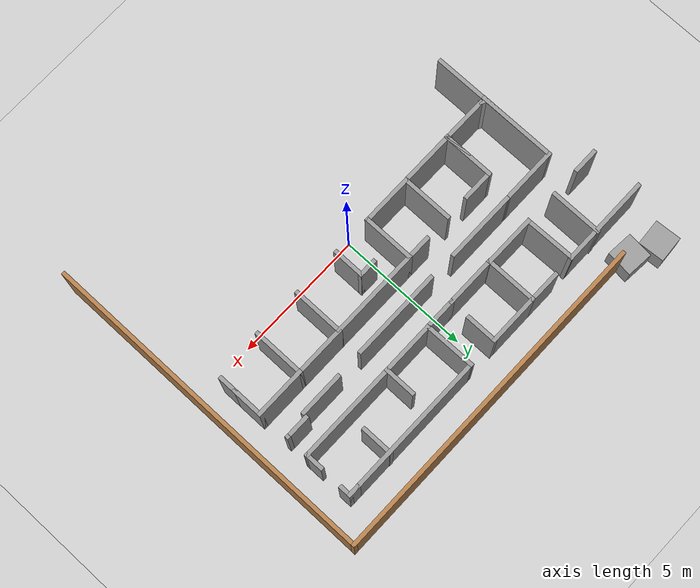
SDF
<sdf version="1.7">
 <world name="default">
  <model name="ground_plane">
   <static>1</static>
   <link name="link">
    <collision name="collision">
     <geometry><plane><normal>0 0 1</normal><size>100 100</size></plane></geometry>
     <surface><friction><ode><mu>100</mu><mu2>50</mu2></ode></friction></surface>
    </collision>
    <visual name="visual">
     <cast_shadows>0</cast_shadows>
     <geometry><plane><normal>0 0 1</normal><size>100 100</size></plane></geometry>
     <material>
      <script><uri>file://media/materials/scripts/gazebo.material</uri><name>Gazebo/Grey</name></script>
     </material>
    </visual>
   </link>
  </model>
  <model name="nidar1">
   <link name="Wall_10">
    <collision name="Wall_10_Collision">
     <geometry><box><size>13 0.15 2.5</size></box></geometry>
     <pose>0 0 1.25 0 -0 0</pose>
    </collision>
    <visual name="Wall_10_Visual">
     <pose>0 0 1.25 0 -0 0</pose>
     <geometry><box><size>13 0.15 2.5</size></box></geometry>
     <material>
      <script><uri>file://media/materials/scripts/gazebo.material</uri><name>Gazebo/Wood</name></script>
      <ambient>1 1 1 1</ambient>
     </material>
     <meta><layer>0</layer></meta>
    </visual>
    <pose>1.04576 7.23235 0 0 -0 3.14159</pose>
   </link>
   <link name="Wall_104">
    <collision name="Wall_104_Collision">
     <geometry><box><size>2.75 0.15 2.5</size></box></geometry>
     <pose>0 0 1.25 0 -0 0</pose>
    </collision>
    <visual name="Wall_104_Visual">
     <pose>0 0 1.25 0 -0 0</pose>
     <geometry><box><size>2.75 0.15 2.5</size></box></geometry>
     <material>
      <script><uri>file://media/materials/scripts/gazebo.material</uri><name>Gazebo/Grey</name></script>
      <ambient>1 1 1 1</ambient>
     </material>
     <meta><layer>0</layer></meta>
    </visual>
    <pose>-2.90001 3.22586 0 0 -0 0</pose>
   </link>
   <link name="Wall_106">
    <collision name="Wall_106_Collision">
     <geometry><box><size>3.5 0.15 2.5</size></box></geometry>
     <pose>0 0 1.25 0 -0 0</pose>
    </collision>
    <visual name="Wall_106_Visual">
     <pose>0 0 1.25 0 -0 0</pose>
     <geometry><box><size>3.5 0.15 2.5</size></box></geometry>
     <material>
      <script><uri>file://media/materials/scripts/gazebo.material</uri><name>Gazebo/Grey</name></script>
      <ambient>1 1 1 1</ambient>
     </material>
     <meta><layer>0</layer></meta>
    </visual>
    <pose>1.15003 3.19392 0 0 -0 0</pose>
   </link>
   <link name="Wall_108">
    <collision name="Wall_108_Collision">
     <geometry><box><size>1.75 0.15 2.5</size></box></geometry>
     <pose>0 0 1.25 0 -0 0</pose>
    </collision>
    <visual name="Wall_108_Visual">
     <pose>0 0 1.25 0 -0 0</pose>
     <geometry><box><size>1.75 0.15 2.5</size></box></geometry>
     <material>
      <script><uri>file://media/materials/scripts/gazebo.material</uri><name>Gazebo/Grey</name></script>
      <ambient>1 1 1 1</ambient>
     </material>
     <meta><layer>0</layer></meta>
    </visual>
    <pose>4.70001 3.21403 0 0 -0 0</pose>
   </link>
   <link name="Wall_110">
    <collision name="Wall_110_Collision">
     <geometry><box><size>3.5 0.15 2.5</size></box></geometry>
     <pose>0 0 1.25 0 -0 0</pose>
    </collision>
    <visual name="Wall_110_Visual">
     <pose>0 0 1.25 0 -0 0</pose>
     <geometry><box><size>3.5 0.15 2.5</size></box></geometry>
     <material>
      <script><uri>file://media/materials/scripts/gazebo.material</uri><name>Gazebo/Grey</name></script>
      <ambient>1 1 1 1</ambient>
     </material>
     <meta><layer>0</layer></meta>
    </visual>
    <pose>1.11152 2.21403 0 0 -0 0</pose>
   </link>
   <link name="Wall_111">
    <collision name="Wall_111_Collision">
     <geometry><box><size>2 0.15 2.5</size></box></geometry>
     <pose>0 0 1.25 0 -0 0</pose>
    </collision>
    <visual name="Wall_111_Visual">
     <pose>0 0 1.25 0 -0 0</pose>
     <geometry><box><size>2 0.15 2.5</size></box></geometry>
     <material>
      <script><uri>file://media/materials/scripts/gazebo.material</uri><name>Gazebo/Grey</name></script>
      <ambient>1 1 1 1</ambient>
     </material>
     <meta><layer>0</layer></meta>
    </visual>
    <pose>2.78652 1.28903 0 0 -0 -1.5708</pose>
   </link>
   <link name="Wall_113">
    <collision name="Wall_113_Collision">
     <geometry><box><size>1.25 0.15 2.5</size></box></geometry>
     <pose>0 0 1.25 0 -0 0</pose>
    </collision>
    <visual name="Wall_113_Visual">
     <pose>0 0 1.25 0 -0 0</pose>
     <geometry><box><size>1.25 0.15 2.5</size></box></geometry>
     <material>
      <script><uri>file://media/materials/scripts/gazebo.material</uri><name>Gazebo/Grey</name></script>
      <ambient>1 1 1 1</ambient>
     </material>
     <meta><layer>0</layer></meta>
    </visual>
    <pose>0.936522 0.914029 0 0 -0 1.5708</pose>
   </link>
   <link name="Wall_114">
    <collision name="Wall_114_Collision">
     <geometry><box><size>0.75 0.15 2.5</size></box></geometry>
     <pose>0 0 1.25 0 -0 0</pose>
    </collision>
    <visual name="Wall_114_Visual">
     <pose>0 0 1.25 0 -0 0</pose>
     <geometry><box><size>0.75 0.15 2.5</size></box></geometry>
     <material>
      <script><uri>file://media/materials/scripts/gazebo.material</uri><name>Gazebo/Grey</name></script>
      <ambient>1 1 1 1</ambient>
     </material>
     <meta><layer>0</layer></meta>
    </visual>
    <pose>0.636522 1.46403 0 0 -0 3.14159</pose>
   </link>
   <link name="Wall_143">
    <collision name="Wall_143_Collision">
     <geometry><box><size>2 0.15 2.5</size></box></geometry>
     <pose>0 0 1.25 0 -0 0</pose>
    </collision>
    <visual name="Wall_143_Visual">
     <pose>0 0 1.25 0 -0 0</pose>
     <geometry><box><size>2 0.15 2.5</size></box></geometry>
     <material>
      <script><uri>file://media/materials/scripts/gazebo.material</uri><name>Gazebo/Grey</name></script>
      <ambient>1 1 1 1</ambient>
     </material>
     <meta><layer>0</layer></meta>
    </visual>
    <pose>3.71152 2.21403 0 0 -0 0</pose>
   </link>
   <link name="Wall_144">
    <collision name="Wall_144_Collision">
     <geometry><box><size>2 0.15 2.5</size></box></geometry>
     <pose>0 0 1.25 0 -0 0</pose>
    </collision>
    <visual name="Wall_144_Visual">
     <pose>0 0 1.25 0 -0 0</pose>
     <geometry><box><size>2 0.15 2.5</size></box></geometry>
     <material>
      <script><uri>file://media/materials/scripts/gazebo.material</uri><name>Gazebo/Grey</name></script>
      <ambient>1 1 1 1</ambient>
     </material>
     <meta><layer>0</layer></meta>
    </visual>
    <pose>4.63652 1.28903 0 0 -0 -1.5708</pose>
   </link>
   <link name="Wall_147">
    <collision name="Wall_147_Collision">
     <geometry><box><size>2 0.15 2.5</size></box></geometry>
     <pose>0 0 1.25 0 -0 0</pose>
    </collision>
    <visual name="Wall_147_Visual">
     <pose>0 0 1.25 0 -0 0</pose>
     <geometry><box><size>2 0.15 2.5</size></box></geometry>
     <material>
      <script><uri>file://media/materials/scripts/gazebo.material</uri><name>Gazebo/Grey</name></script>
      <ambient>1 1 1 1</ambient>
     </material>
     <meta><layer>0</layer></meta>
    </visual>
    <pose>5.56152 2.21403 0 0 -0 0</pose>
   </link>
   <link name="Wall_148">
    <collision name="Wall_148_Collision">
     <geometry><box><size>1.25 0.15 2.5</size></box></geometry>
     <pose>0 0 1.25 0 -0 0</pose>
    </collision>
    <visual name="Wall_148_Visual">
     <pose>0 0 1.25 0 -0 0</pose>
     <geometry><box><size>1.25 0.15 2.5</size></box></geometry>
     <material>
      <script><uri>file://media/materials/scripts/gazebo.material</uri><name>Gazebo/Grey</name></script>
      <ambient>1 1 1 1</ambient>
     </material>
     <meta><layer>0</layer></meta>
    </visual>
    <pose>6.48652 1.66403 0 0 -0 -1.5708</pose>
   </link>
   <link name="Wall_152">
    <collision name="Wall_152_Collision">
     <geometry><box><size>0.75 0.15 2.5</size></box></geometry>
     <pose>0 0 1.25 0 -0 0</pose>
    </collision>
    <visual name="Wall_152_Visual">
     <pose>0 0 1.25 0 -0 0</pose>
     <geometry><box><size>0.75 0.15 2.5</size></box></geometry>
     <material>
      <script><uri>file://media/materials/scripts/gazebo.material</uri><name>Gazebo/Grey</name></script>
      <ambient>1 1 1 1</ambient>
     </material>
     <meta><layer>0</layer></meta>
    </visual>
    <pose>6.48652 0.814029 0 0 -0 -1.5708</pose>
   </link>
   <link name="Wall_18">
    <collision name="Wall_18_Collision">
     <geometry><box><size>3.5 0.15 2.5</size></box></geometry>
     <pose>0 0 1.25 0 -0 0</pose>
    </collision>
    <visual name="Wall_18_Visual">
     <pose>0 0 1.25 0 -0 0</pose>
     <geometry><box><size>3.5 0.15 2.5</size></box></geometry>
     <material>
      <script><uri>file://media/materials/scripts/gazebo.material</uri><name>Gazebo/Grey</name></script>
      <ambient>1 1 1 1</ambient>
     </material>
     <meta><layer>0</layer></meta>
    </visual>
    <pose>-5.79576 6.09678 0 0 -0 0</pose>
   </link>
   <link name="Wall_19">
    <collision name="Wall_19_Collision">
     <geometry><box><size>2 0.15 2.5</size></box></geometry>
     <pose>0 0 1.25 0 -0 0</pose>
    </collision>
    <visual name="Wall_19_Visual">
     <pose>0 0 1.25 0 -0 0</pose>
     <geometry><box><size>2 0.15 2.5</size></box></geometry>
     <material>
      <script><uri>file://media/materials/scripts/gazebo.material</uri><name>Gazebo/Grey</name></script>
      <ambient>1 1 1 1</ambient>
     </material>
     <meta><layer>0</layer></meta>
    </visual>
    <pose>-4.12076 5.17178 0 0 -0 -1.55189</pose>
   </link>
   <link name="Wall_20">
    <collision name="Wall_20_Collision">
     <geometry><box><size>2.02788 0.15 2.5</size></box></geometry>
     <pose>0 0 1.25 0 -0 0</pose>
    </collision>
    <visual name="Wall_20_Visual">
     <pose>0 0 1.25 0 -0 0</pose>
     <geometry><box><size>2.02788 0.15 2.5</size></box></geometry>
     <material>
      <script><uri>file://media/materials/scripts/gazebo.material</uri><name>Gazebo/Grey</name></script>
      <ambient>1 1 1 1</ambient>
     </material>
     <meta><layer>0</layer></meta>
    </visual>
    <pose>-3.16469 4.24354 0 0 -0 -0.003456</pose>
   </link>
   <link name="Wall_21">
    <collision name="Wall_21_Collision">
     <geometry><box><size>2 0.15 2.5</size></box></geometry>
     <pose>0 0 1.25 0 -0 0</pose>
    </collision>
    <visual name="Wall_21_Visual">
     <pose>0 0 1.25 0 -0 0</pose>
     <geometry><box><size>2 0.15 2.5</size></box></geometry>
     <material>
      <script><uri>file://media/materials/scripts/gazebo.material</uri><name>Gazebo/Grey</name></script>
      <ambient>1 1 1 1</ambient>
     </material>
     <meta><layer>0</layer></meta>
    </visual>
    <pose>-2.22612 5.15009 0 0 -0 1.5708</pose>
   </link>
   <link name="Wall_22">
    <collision name="Wall_22_Collision">
     <geometry><box><size>1.27717 0.15 2.5</size></box></geometry>
     <pose>0 0 1.25 0 -0 0</pose>
    </collision>
    <visual name="Wall_22_Visual">
     <pose>0 0 1.25 0 -0 0</pose>
     <geometry><box><size>1.27717 0.15 2.5</size></box></geometry>
     <material>
      <script><uri>file://media/materials/scripts/gazebo.material</uri><name>Gazebo/Grey</name></script>
      <ambient>1 1 1 1</ambient>
     </material>
     <meta><layer>0</layer></meta>
    </visual>
    <pose>-2.78969 6.09354 0 0 -0 3.13584</pose>
   </link>
   <link name="Wall_25">
    <collision name="Wall_25_Collision">
     <geometry><box><size>2 0.15 2.5</size></box></geometry>
     <pose>0 0 1.25 0 -0 0</pose>
    </collision>
    <visual name="Wall_25_Visual">
     <pose>0 0 1.25 0 -0 0</pose>
     <geometry><box><size>2 0.15 2.5</size></box></geometry>
     <material>
      <script><uri>file://media/materials/scripts/gazebo.material</uri><name>Gazebo/Grey</name></script>
      <ambient>1 1 1 1</ambient>
     </material>
     <meta><layer>0</layer></meta>
    </visual>
    <pose>-1.30112 6.0903 0 0 -0 0</pose>
   </link>
   <link name="Wall_26">
    <collision name="Wall_26_Collision">
     <geometry><box><size>1.25 0.15 2.5</size></box></geometry>
     <pose>0 0 1.25 0 -0 0</pose>
    </collision>
    <visual name="Wall_26_Visual">
     <pose>0 0 1.25 0 -0 0</pose>
     <geometry><box><size>1.25 0.15 2.5</size></box></geometry>
     <material>
      <script><uri>file://media/materials/scripts/gazebo.material</uri><name>Gazebo/Grey</name></script>
      <ambient>1 1 1 1</ambient>
     </material>
     <meta><layer>0</layer></meta>
    </visual>
    <pose>-0.376115 5.5403 0 0 -0 -1.5708</pose>
   </link>
   <link name="Wall_28">
    <collision name="Wall_28_Collision">
     <geometry><box><size>2 0.15 2.5</size></box></geometry>
     <pose>0 0 1.25 0 -0 0</pose>
    </collision>
    <visual name="Wall_28_Visual">
     <pose>0 0 1.25 0 -0 0</pose>
     <geometry><box><size>2 0.15 2.5</size></box></geometry>
     <material>
      <script><uri>file://media/materials/scripts/gazebo.material</uri><name>Gazebo/Grey</name></script>
      <ambient>1 1 1 1</ambient>
     </material>
     <meta><layer>0</layer></meta>
    </visual>
    <pose>-1.30112 4.22509 0 0 -0 0</pose>
   </link>
   <link name="Wall_29">
    <collision name="Wall_29_Collision">
     <geometry><box><size>1.27011 0.15 2.5</size></box></geometry>
     <pose>0 0 1.25 0 -0 0</pose>
    </collision>
    <visual name="Wall_29_Visual">
     <pose>0 0 1.25 0 -0 0</pose>
     <geometry><box><size>1.27011 0.15 2.5</size></box></geometry>
     <material>
      <script><uri>file://media/materials/scripts/gazebo.material</uri><name>Gazebo/Grey</name></script>
      <ambient>1 1 1 1</ambient>
     </material>
     <meta><layer>0</layer></meta>
    </visual>
    <pose>0.183942 4.22509 0 0 -0 0</pose>
   </link>
   <link name="Wall_30">
    <collision name="Wall_30_Collision">
     <geometry><box><size>2.00011 0.15 2.5</size></box></geometry>
     <pose>0 0 1.25 0 -0 0</pose>
    </collision>
    <visual name="Wall_30_Visual">
     <pose>0 0 1.25 0 -0 0</pose>
     <geometry><box><size>2.00011 0.15 2.5</size></box></geometry>
     <material>
      <script><uri>file://media/materials/scripts/gazebo.material</uri><name>Gazebo/Grey</name></script>
      <ambient>1 1 1 1</ambient>
     </material>
     <meta><layer>0</layer></meta>
    </visual>
    <pose>0.733942 5.15009 0 0 -0 1.58167</pose>
   </link>
   <link name="Wall_31">
    <collision name="Wall_31_Collision">
     <geometry><box><size>5.5 0.15 2.5</size></box></geometry>
     <pose>0 0 1.25 0 -0 0</pose>
    </collision>
    <visual name="Wall_31_Visual">
     <pose>0 0 1.25 0 -0 0</pose>
     <geometry><box><size>5.5 0.15 2.5</size></box></geometry>
     <material>
      <script><uri>file://media/materials/scripts/gazebo.material</uri><name>Gazebo/Grey</name></script>
      <ambient>1 1 1 1</ambient>
     </material>
     <meta><layer>0</layer></meta>
    </visual>
    <pose>3.39888 6.07509 0 0 -0 0</pose>
   </link>
   <link name="Wall_32">
    <collision name="Wall_32_Collision">
     <geometry><box><size>0.5 0.15 2.5</size></box></geometry>
     <pose>0 0 1.25 0 -0 0</pose>
    </collision>
    <visual name="Wall_32_Visual">
     <pose>0 0 1.25 0 -0 0</pose>
     <geometry><box><size>0.5 0.15 2.5</size></box></geometry>
     <material>
      <script><uri>file://media/materials/scripts/gazebo.material</uri><name>Gazebo/Grey</name></script>
      <ambient>1 1 1 1</ambient>
     </material>
     <meta><layer>0</layer></meta>
    </visual>
    <pose>6.24888 6.07509 0 0 -0 0</pose>
   </link>
   <link name="Wall_33">
    <collision name="Wall_33_Collision">
     <geometry><box><size>0.5 0.15 2.5</size></box></geometry>
     <pose>0 0 1.25 0 -0 0</pose>
    </collision>
    <visual name="Wall_33_Visual">
     <pose>0 0 1.25 0 -0 0</pose>
     <geometry><box><size>0.5 0.15 2.5</size></box></geometry>
     <material>
      <script><uri>file://media/materials/scripts/gazebo.material</uri><name>Gazebo/Grey</name></script>
      <ambient>1 1 1 1</ambient>
     </material>
     <meta><layer>0</layer></meta>
    </visual>
    <pose>6.42389 5.90009 0 0 -0 -1.5708</pose>
   </link>
   <link name="Wall_35">
    <collision name="Wall_35_Collision">
     <geometry><box><size>5.80131 0.15 2.5</size></box></geometry>
     <pose>0 0 1.25 0 -0 0</pose>
    </collision>
    <visual name="Wall_35_Visual">
     <pose>0 0 1.25 0 -0 0</pose>
     <geometry><box><size>5.80131 0.15 2.5</size></box></geometry>
     <material>
      <script><uri>file://media/materials/scripts/gazebo.material</uri><name>Gazebo/Grey</name></script>
      <ambient>1 1 1 1</ambient>
     </material>
     <meta><layer>0</layer></meta>
    </visual>
    <pose>3.58977 4.22509 0 0 -0 0</pose>
   </link>
   <link name="Wall_36">
    <collision name="Wall_36_Collision">
     <geometry><box><size>0.75 0.15 2.5</size></box></geometry>
     <pose>0 0 1.25 0 -0 0</pose>
    </collision>
    <visual name="Wall_36_Visual">
     <pose>0 0 1.25 0 -0 0</pose>
     <geometry><box><size>0.75 0.15 2.5</size></box></geometry>
     <material>
      <script><uri>file://media/materials/scripts/gazebo.material</uri><name>Gazebo/Grey</name></script>
      <ambient>1 1 1 1</ambient>
     </material>
     <meta><layer>0</layer></meta>
    </visual>
    <pose>6.4153 4.52509 0 0 -0 1.57119</pose>
   </link>
   <link name="Wall_45">
    <collision name="Wall_45_Collision">
     <geometry><box><size>0.15 0.15 2.5</size></box></geometry>
     <pose>0 0 1.25 0 -0 0</pose>
    </collision>
    <visual name="Wall_45_Visual">
     <pose>0 0 1.25 0 -0 0</pose>
     <geometry><box><size>0.15 0.15 2.5</size></box></geometry>
     <material>
      <script><uri>file://media/materials/scripts/gazebo.material</uri><name>Gazebo/Grey</name></script>
      <ambient>1 1 1 1</ambient>
     </material>
     <meta><layer>0</layer></meta>
    </visual>
    <pose>6.41542 3.37509 0 0 -0 0</pose>
   </link>
   <link name="Wall_48">
    <collision name="Wall_48_Collision">
     <geometry><box><size>2.2402 0.15 2.5</size></box></geometry>
     <pose>0 0 1.25 0 -0 0</pose>
    </collision>
    <visual name="Wall_48_Visual">
     <pose>0 0 1.25 0 -0 0</pose>
     <geometry><box><size>2.2402 0.15 2.5</size></box></geometry>
     <material>
      <script><uri>file://media/materials/scripts/gazebo.material</uri><name>Gazebo/Grey</name></script>
      <ambient>1 1 1 1</ambient>
     </material>
     <meta><layer>0</layer></meta>
    </visual>
    <pose>-5.24511 3.22259 0 0 -0 -3.13847</pose>
   </link>
   <link name="Wall_51">
    <collision name="Wall_51_Collision">
     <geometry><box><size>1 0.15 2.5</size></box></geometry>
     <pose>0 0 1.25 0 -0 0</pose>
    </collision>
    <visual name="Wall_51_Visual">
     <pose>0 0 1.25 0 -0 0</pose>
     <geometry><box><size>1 0.15 2.5</size></box></geometry>
     <material>
      <script><uri>file://media/materials/scripts/gazebo.material</uri><name>Gazebo/Grey</name></script>
      <ambient>1 1 1 1</ambient>
     </material>
     <meta><layer>0</layer></meta>
    </visual>
    <pose>-6.92657 4.2635 0 0 -0 0</pose>
   </link>
   <link name="Wall_53">
    <collision name="Wall_53_Collision">
     <geometry><box><size>2 0.15 2.5</size></box></geometry>
     <pose>0 0 1.25 0 -0 0</pose>
    </collision>
    <visual name="Wall_53_Visual">
     <pose>0 0 1.25 0 -0 0</pose>
     <geometry><box><size>2 0.15 2.5</size></box></geometry>
     <material>
      <script><uri>file://media/materials/scripts/gazebo.material</uri><name>Gazebo/Grey</name></script>
      <ambient>1 1 1 1</ambient>
     </material>
     <meta><layer>0</layer></meta>
    </visual>
    <pose>-5.38321 5.207 0 0 -0 1.5708</pose>
   </link>
   <link name="Wall_56">
    <collision name="Wall_56_Collision">
     <geometry><box><size>1.25 0.15 2.5</size></box></geometry>
     <pose>0 0 1.25 0 -0 0</pose>
    </collision>
    <visual name="Wall_56_Visual">
     <pose>0 0 1.25 0 -0 0</pose>
     <geometry><box><size>1.25 0.15 2.5</size></box></geometry>
     <material>
      <script><uri>file://media/materials/scripts/gazebo.material</uri><name>Gazebo/Grey</name></script>
      <ambient>1 1 1 1</ambient>
     </material>
     <meta><layer>0</layer></meta>
    </visual>
    <pose>4.57677 5.54563 0 0 -0 -1.5708</pose>
   </link>
   <link name="Wall_60">
    <collision name="Wall_60_Collision">
     <geometry><box><size>1.25 0.15 2.5</size></box></geometry>
     <pose>0 0 1.25 0 -0 0</pose>
    </collision>
    <visual name="Wall_60_Visual">
     <pose>0 0 1.25 0 -0 0</pose>
     <geometry><box><size>1.25 0.15 2.5</size></box></geometry>
     <material>
      <script><uri>file://media/materials/scripts/gazebo.material</uri><name>Gazebo/Grey</name></script>
      <ambient>1 1 1 1</ambient>
     </material>
     <meta><layer>0</layer></meta>
    </visual>
    <pose>2.68677 4.77564 0 0 -0 1.5708</pose>
   </link>
   <link name="Wall_62">
    <collision name="Wall_62_Collision">
     <geometry><box><size>4.97484 0.15 2.5</size></box></geometry>
     <pose>0 0 1.25 0 -0 0</pose>
    </collision>
    <visual name="Wall_62_Visual">
     <pose>0 0 1.25 0 -0 0</pose>
     <geometry><box><size>4.97484 0.15 2.5</size></box></geometry>
     <material>
      <script><uri>file://media/materials/scripts/gazebo.material</uri><name>Gazebo/Grey</name></script>
      <ambient>1 1 1 1</ambient>
     </material>
     <meta><layer>0</layer></meta>
    </visual>
    <pose>-6.28359 0.806907 0 0 -0 -1.56805</pose>
   </link>
   <link name="Wall_66">
    <collision name="Wall_66_Collision">
     <geometry><box><size>1.75 0.15 2.5</size></box></geometry>
     <pose>0 0 1.25 0 -0 0</pose>
    </collision>
    <visual name="Wall_66_Visual">
     <pose>0 0 1.25 0 -0 0</pose>
     <geometry><box><size>1.75 0.15 2.5</size></box></geometry>
     <material>
      <script><uri>file://media/materials/scripts/gazebo.material</uri><name>Gazebo/Grey</name></script>
      <ambient>1 1 1 1</ambient>
     </material>
     <meta><layer>0</layer></meta>
    </visual>
    <pose>-5.31348 0.364029 0 0 -0 3.14159</pose>
   </link>
   <link name="Wall_67">
    <collision name="Wall_67_Collision">
     <geometry><box><size>0.25 0.15 2.5</size></box></geometry>
     <pose>0 0 1.25 0 -0 0</pose>
    </collision>
    <visual name="Wall_67_Visual">
     <pose>0 0 1.25 0 -0 0</pose>
     <geometry><box><size>0.25 0.15 2.5</size></box></geometry>
     <material>
      <script><uri>file://media/materials/scripts/gazebo.material</uri><name>Gazebo/Grey</name></script>
      <ambient>1 1 1 1</ambient>
     </material>
     <meta><layer>0</layer></meta>
    </visual>
    <pose>-6.15678 0.389029 0 0 -0 2.61799</pose>
   </link>
   <link name="Wall_69">
    <collision name="Wall_69_Collision">
     <geometry><box><size>3.01994 0.15 2.5</size></box></geometry>
     <pose>0 0 1.25 0 -0 0</pose>
    </collision>
    <visual name="Wall_69_Visual">
     <pose>0 0 1.25 0 -0 0</pose>
     <geometry><box><size>3.01994 0.15 2.5</size></box></geometry>
     <material>
      <script><uri>file://media/materials/scripts/gazebo.material</uri><name>Gazebo/Grey</name></script>
      <ambient>1 1 1 1</ambient>
     </material>
     <meta><layer>0</layer></meta>
    </visual>
    <pose>-6.2902 1.78459 0 0 -0 -1.5708</pose>
   </link>
   <link name="Wall_71">
    <collision name="Wall_71_Collision">
     <geometry><box><size>2.0202 0.15 2.5</size></box></geometry>
     <pose>0 0 1.25 0 -0 0</pose>
    </collision>
    <visual name="Wall_71_Visual">
     <pose>0 0 1.25 0 -0 0</pose>
     <geometry><box><size>2.0202 0.15 2.5</size></box></geometry>
     <material>
      <script><uri>file://media/materials/scripts/gazebo.material</uri><name>Gazebo/Grey</name></script>
      <ambient>1 1 1 1</ambient>
     </material>
     <meta><layer>0</layer></meta>
    </visual>
    <pose>-4.4402 1.28459 0 0 -0 1.5708</pose>
   </link>
   <link name="Wall_72">
    <collision name="Wall_72_Collision">
     <geometry><box><size>1.25 0.15 2.5</size></box></geometry>
     <pose>0 0 1.25 0 -0 0</pose>
    </collision>
    <visual name="Wall_72_Visual">
     <pose>0 0 1.25 0 -0 0</pose>
     <geometry><box><size>1.25 0.15 2.5</size></box></geometry>
     <material>
      <script><uri>file://media/materials/scripts/gazebo.material</uri><name>Gazebo/Grey</name></script>
      <ambient>1 1 1 1</ambient>
     </material>
     <meta><layer>0</layer></meta>
    </visual>
    <pose>-3.8902 2.21932 0 0 -0 0</pose>
   </link>
   <link name="Wall_74">
    <collision name="Wall_74_Collision">
     <geometry><box><size>2.25 0.15 2.5</size></box></geometry>
     <pose>0 0 1.25 0 -0 0</pose>
    </collision>
    <visual name="Wall_74_Visual">
     <pose>0 0 1.25 0 -0 0</pose>
     <geometry><box><size>2.25 0.15 2.5</size></box></geometry>
     <material>
      <script><uri>file://media/materials/scripts/gazebo.material</uri><name>Gazebo/Grey</name></script>
      <ambient>1 1 1 1</ambient>
     </material>
     <meta><layer>0</layer></meta>
    </visual>
    <pose>-3.46348 0.364029 0 0 -0 0</pose>
   </link>
   <link name="Wall_75">
    <collision name="Wall_75_Collision">
     <geometry><box><size>2 0.15 2.5</size></box></geometry>
     <pose>0 0 1.25 0 -0 0</pose>
    </collision>
    <visual name="Wall_75_Visual">
     <pose>0 0 1.25 0 -0 0</pose>
     <geometry><box><size>2 0.15 2.5</size></box></geometry>
     <material>
      <script><uri>file://media/materials/scripts/gazebo.material</uri><name>Gazebo/Grey</name></script>
      <ambient>1 1 1 1</ambient>
     </material>
     <meta><layer>0</layer></meta>
    </visual>
    <pose>-2.41348 1.28903 0 0 -0 1.5708</pose>
   </link>
   <link name="Wall_77">
    <collision name="Wall_77_Collision">
     <geometry><box><size>1.06955 0.15 2.5</size></box></geometry>
     <pose>0 0 1.25 0 -0 0</pose>
    </collision>
    <visual name="Wall_77_Visual">
     <pose>0 0 1.25 0 -0 0</pose>
     <geometry><box><size>1.06955 0.15 2.5</size></box></geometry>
     <material>
      <script><uri>file://media/materials/scripts/gazebo.material</uri><name>Gazebo/Grey</name></script>
      <ambient>1 1 1 1</ambient>
     </material>
     <meta><layer>0</layer></meta>
    </visual>
    <pose>-4.4402 0.809591 0 0 -0 1.5708</pose>
   </link>
   <link name="Wall_84">
    <collision name="Wall_84_Collision">
     <geometry><box><size>2 0.15 2.5</size></box></geometry>
     <pose>0 0 1.25 0 -0 0</pose>
    </collision>
    <visual name="Wall_84_Visual">
     <pose>0 0 1.25 0 -0 0</pose>
     <geometry><box><size>2 0.15 2.5</size></box></geometry>
     <material>
      <script><uri>file://media/materials/scripts/gazebo.material</uri><name>Gazebo/Grey</name></script>
      <ambient>1 1 1 1</ambient>
     </material>
     <meta><layer>0</layer></meta>
    </visual>
    <pose>-1.48848 0.364029 0 0 -0 0</pose>
   </link>
   <link name="Wall_85">
    <collision name="Wall_85_Collision">
     <geometry><box><size>2 0.15 2.5</size></box></geometry>
     <pose>0 0 1.25 0 -0 0</pose>
    </collision>
    <visual name="Wall_85_Visual">
     <pose>0 0 1.25 0 -0 0</pose>
     <geometry><box><size>2 0.15 2.5</size></box></geometry>
     <material>
      <script><uri>file://media/materials/scripts/gazebo.material</uri><name>Gazebo/Grey</name></script>
      <ambient>1 1 1 1</ambient>
     </material>
     <meta><layer>0</layer></meta>
    </visual>
    <pose>-0.563478 1.28903 0 0 -0 1.5708</pose>
   </link>
   <link name="Wall_86">
    <collision name="Wall_86_Collision">
     <geometry><box><size>1 0.15 2.5</size></box></geometry>
     <pose>0 0 1.25 0 -0 0</pose>
    </collision>
    <visual name="Wall_86_Visual">
     <pose>0 0 1.25 0 -0 0</pose>
     <geometry><box><size>1 0.15 2.5</size></box></geometry>
     <material>
      <script><uri>file://media/materials/scripts/gazebo.material</uri><name>Gazebo/Grey</name></script>
      <ambient>1 1 1 1</ambient>
     </material>
     <meta><layer>0</layer></meta>
    </visual>
    <pose>-0.988478 2.21403 0 0 -0 3.14159</pose>
   </link>
   <link name="Wall_9">
    <collision name="Wall_9_Collision">
     <geometry><box><size>13 0.15 2.5</size></box></geometry>
     <pose>0 0 1.25 0 -0 0</pose>
    </collision>
    <visual name="Wall_9_Visual">
     <pose>0 0 1.25 0 -0 0</pose>
     <geometry><box><size>13 0.15 2.5</size></box></geometry>
     <material>
      <script><uri>file://media/materials/scripts/gazebo.material</uri><name>Gazebo/Wood</name></script>
      <ambient>1 1 1 1</ambient>
     </material>
     <meta><layer>0</layer></meta>
    </visual>
    <pose>7.47076 0.80735 0 0 -0 1.5708</pose>
   </link>
   <link name="Wall_94">
    <collision name="Wall_94_Collision">
     <geometry><box><size>1 0.15 2.5</size></box></geometry>
     <pose>0 0 1.25 0 -0 0</pose>
    </collision>
    <visual name="Wall_94_Visual">
     <pose>0 0 1.25 0 -0 0</pose>
     <geometry><box><size>1 0.15 2.5</size></box></geometry>
     <material>
      <script><uri>file://media/materials/scripts/gazebo.material</uri><name>Gazebo/Grey</name></script>
      <ambient>1 1 1 1</ambient>
     </material>
     <meta><layer>0</layer></meta>
    </visual>
    <pose>5.99042 3.37509 0 0 -0 3.14159</pose>
   </link>
   <static>1</static>
  </model>
  <model name="unit_box">
   <pose>-6.9956 7.74935 0.5 0 -0 0.071496</pose>
   <link name="link">
    <inertial>
     <mass>1</mass>
     <inertia>
      <ixx>0.166667</ixx>
      <ixy>0</ixy>
      <ixz>0</ixz>
      <iyy>0.166667</iyy>
      <iyz>0</iyz>
      <izz>0.166667</izz>
     </inertia>
    </inertial>
    <collision name="collision"><geometry><box><size>1 1 1</size></box></geometry></collision>
    <visual name="visual">
     <geometry><box><size>1 1 1</size></box></geometry>
     <material>
      <script><name>Gazebo/Grey</name><uri>file://media/materials/scripts/gazebo.material</uri></script>
     </material>
    </visual>
   </link>
  </model>
  <model name="unit_box_clone">
   <pose>-5.95525 7.31912 0.5 -0 -0 -0.08181</pose>
   <link name="link">
    <inertial>
     <mass>1</mass>
     <inertia>
      <ixx>0.166667</ixx>
      <ixy>0</ixy>
      <ixz>0</ixz>
      <iyy>0.166667</iyy>
      <iyz>0</iyz>
      <izz>0.166667</izz>
     </inertia>
    </inertial>
    <collision name="collision"><geometry><box><size>1 1 1</size></box></geometry></collision>
    <visual name="visual">
     <geometry><box><size>1 1 1</size></box></geometry>
     <material>
      <script><name>Gazebo/Grey</name><uri>file://media/materials/scripts/gazebo.material</uri></script>
     </material>
    </visual>
   </link>
  </model>
 </world>
</sdf>
